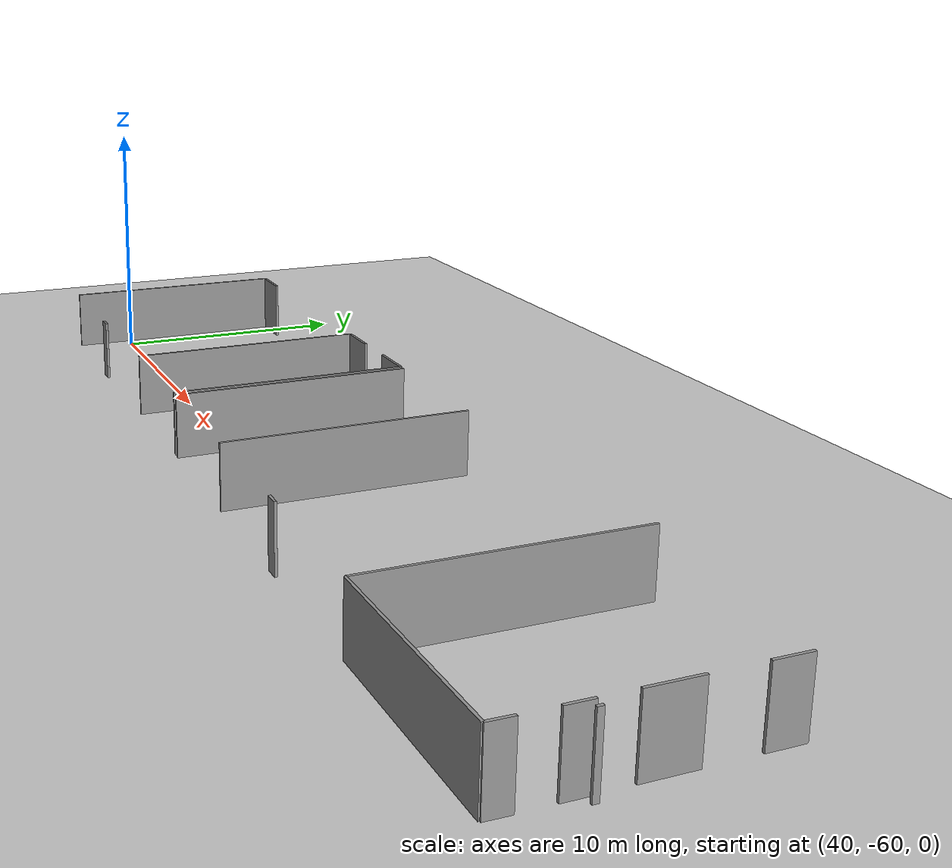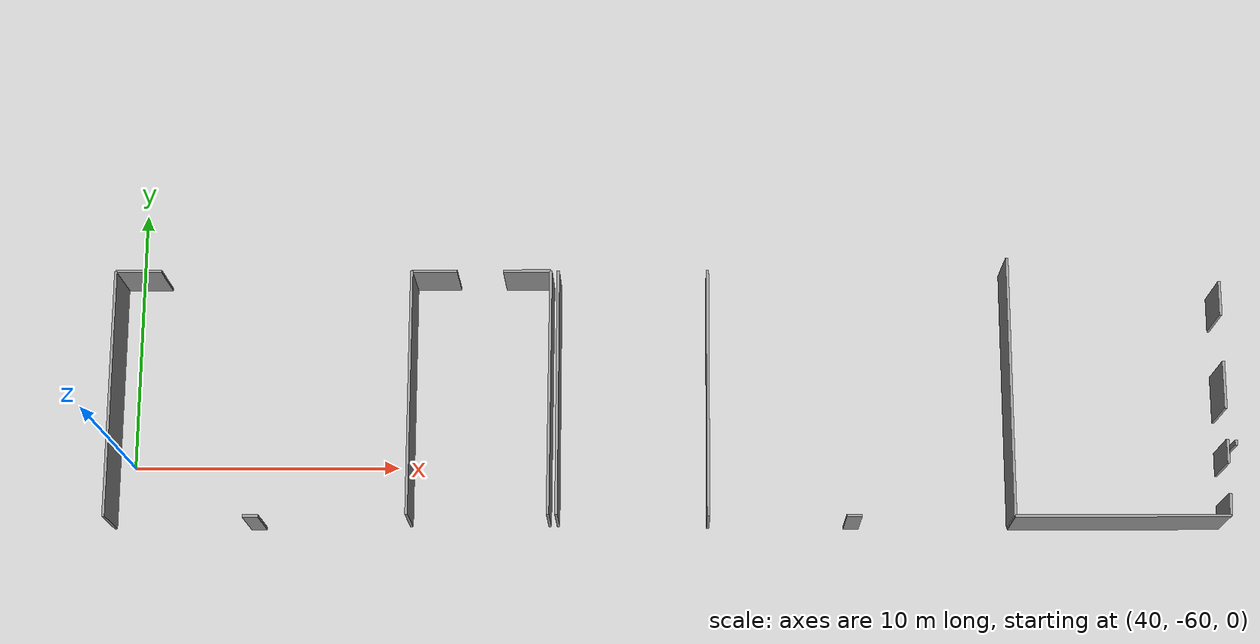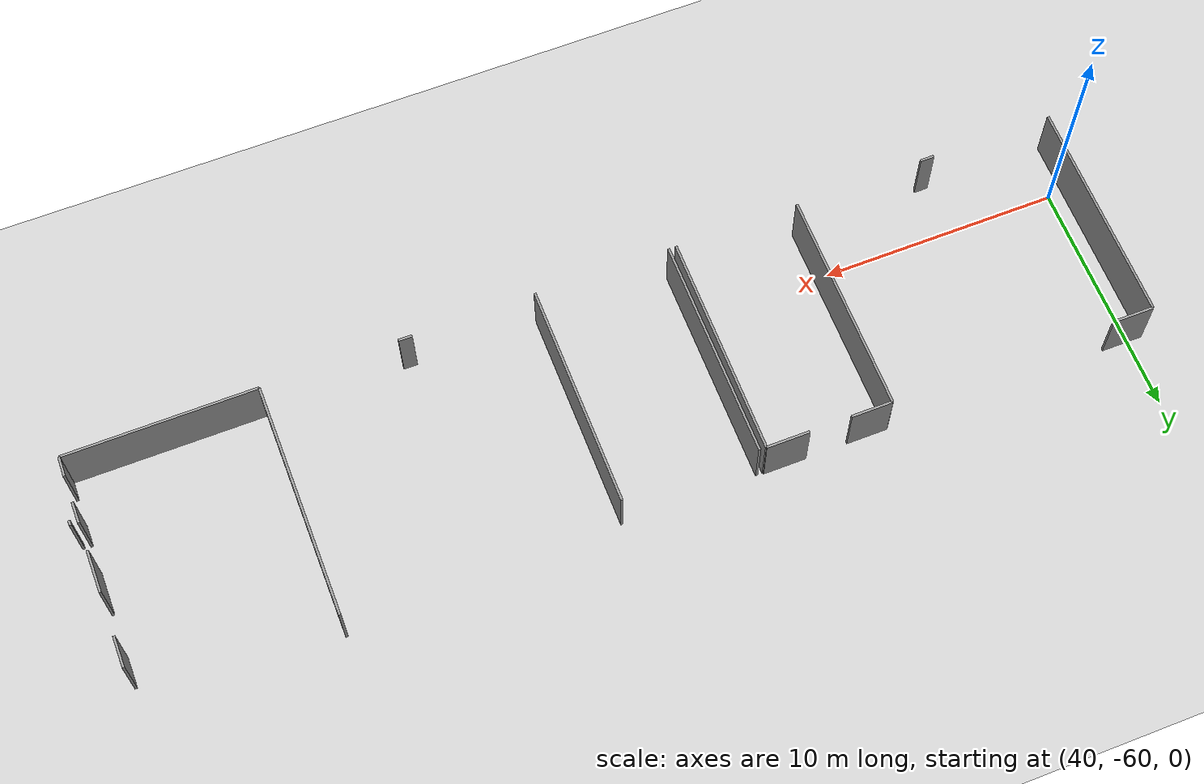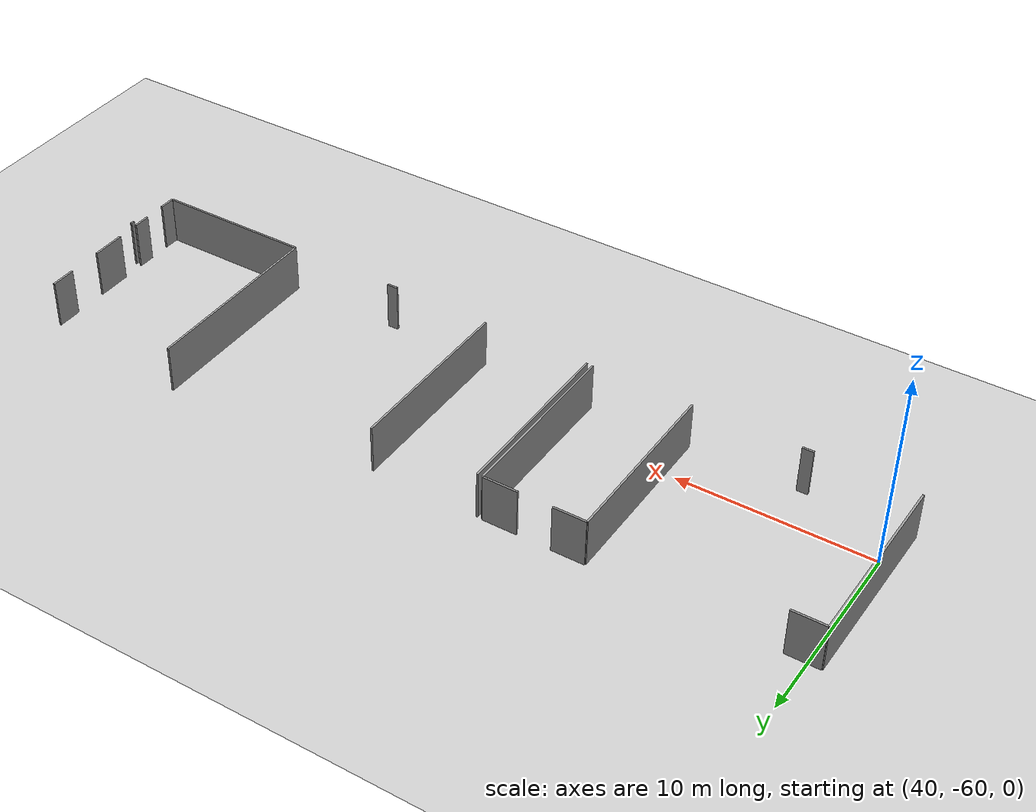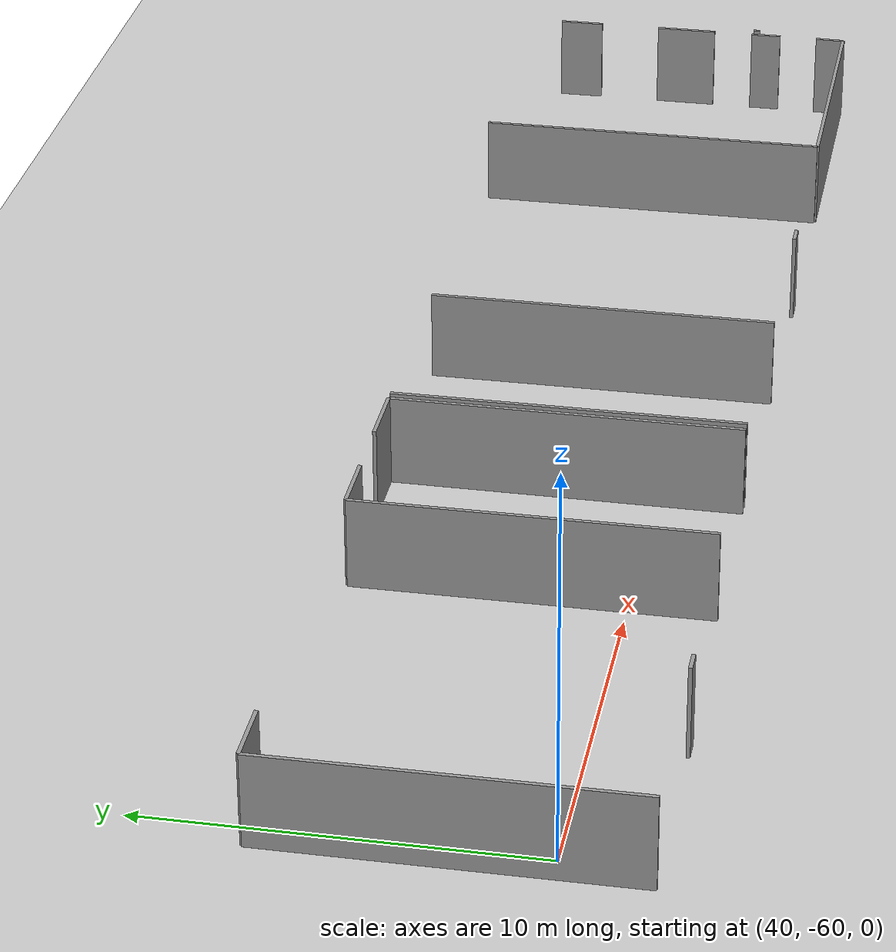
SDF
<sdf version="1.6">
 <world name="default">
  <model name="ground_plane">
   <static>1</static>
   <link name="link">
    <collision name="collision">
     <geometry><plane><normal>0 0 1</normal><size>100 100</size></plane></geometry>
     <surface><friction><ode><mu>100</mu><mu2>50</mu2></ode></friction></surface>
    </collision>
    <visual name="visual">
     <cast_shadows>0</cast_shadows>
     <geometry><plane><normal>0 0 1</normal><size>100 100</size></plane></geometry>
     <material>
      <script><uri>file://media/materials/scripts/gazebo.material</uri><name>Gazebo/Grey</name></script>
     </material>
    </visual>
   </link>
  </model>
  <model name="0510045905_A_40_1_103">
   <static>1</static>
   <link name="Wall_519">
    <collision name="Wall_519_Collision">
     <geometry><box><size>0.583999035551 0.1 2.5</size></box></geometry>
     <pose>0.291999517776 0 1.25 0 0 0</pose>
    </collision>
    <visual name="Wall_519_Visual">
     <pose>0.291999517776 0 1.25 0 0 0</pose>
     <geometry><box><size>0.583999035551 0.1 2.5</size></box></geometry>
     <material>
      <script><uri>file://media/materials/scripts/gazebo.material</uri><name>Gazebo/Grey</name></script>
      <ambient>1 1 1 1</ambient>
     </material>
    </visual>
    <pose>128.877495987 -124.723260344 0 0 0 3.14159265359</pose>
   </link>
   <link name="Wall_520">
    <collision name="Wall_520_Collision">
     <geometry><box><size>9.405912324 0.1 2.5</size></box></geometry>
     <pose>4.702956162 0 1.25 0 0 0</pose>
    </collision>
    <visual name="Wall_520_Visual">
     <pose>4.702956162 0 1.25 0 0 0</pose>
     <geometry><box><size>9.405912324 0.1 2.5</size></box></geometry>
     <material>
      <script><uri>file://media/materials/scripts/gazebo.material</uri><name>Gazebo/Grey</name></script>
      <ambient>1 1 1 1</ambient>
     </material>
    </visual>
    <pose>123.153493271 -124.723260344 0 0 0 1.57079632679</pose>
   </link>
   <link name="Wall_521">
    <collision name="Wall_521_Collision">
     <geometry><box><size>1.73169292463 0.1 2.5</size></box></geometry>
     <pose>0.865846462314 0 1.25 0 0 0</pose>
    </collision>
    <visual name="Wall_521_Visual">
     <pose>0.865846462314 0 1.25 0 0 0</pose>
     <geometry><box><size>1.73169292463 0.1 2.5</size></box></geometry>
     <material>
      <script><uri>file://media/materials/scripts/gazebo.material</uri><name>Gazebo/Grey</name></script>
      <ambient>1 1 1 1</ambient>
     </material>
    </visual>
    <pose>123.153493271 -115.31734802 0 0 0 0.0</pose>
   </link>
   <link name="Wall_525">
    <collision name="Wall_525_Collision">
     <geometry><box><size>9.34601498702 0.1 2.5</size></box></geometry>
     <pose>4.67300749351 0 1.25 0 0 0</pose>
    </collision>
    <visual name="Wall_525_Visual">
     <pose>4.67300749351 0 1.25 0 0 0</pose>
     <geometry><box><size>9.34601498702 0.1 2.5</size></box></geometry>
     <material>
      <script><uri>file://media/materials/scripts/gazebo.material</uri><name>Gazebo/Grey</name></script>
      <ambient>1 1 1 1</ambient>
     </material>
    </visual>
    <pose>134.336529127 -124.667677646 0 0 0 1.57079632679</pose>
   </link>
   <link name="Wall_526">
    <collision name="Wall_526_Collision">
     <geometry><box><size>1.71722619493 0.1 2.5</size></box></geometry>
     <pose>0.858613097466 0 1.25 0 0 0</pose>
    </collision>
    <visual name="Wall_526_Visual">
     <pose>0.858613097466 0 1.25 0 0 0</pose>
     <geometry><box><size>1.71722619493 0.1 2.5</size></box></geometry>
     <material>
      <script><uri>file://media/materials/scripts/gazebo.material</uri><name>Gazebo/Grey</name></script>
      <ambient>1 1 1 1</ambient>
     </material>
    </visual>
    <pose>134.336529127 -115.321662659 0 0 0 0.0</pose>
   </link>
   <link name="Wall_527">
    <collision name="Wall_527_Collision">
     <geometry><box><size>1.79945813214 0.1 2.5</size></box></geometry>
     <pose>0.899729066071 0 1.25 0 0 0</pose>
    </collision>
    <visual name="Wall_527_Visual">
     <pose>0.899729066071 0 1.25 0 0 0</pose>
     <geometry><box><size>1.79945813214 0.1 2.5</size></box></geometry>
     <material>
      <script><uri>file://media/materials/scripts/gazebo.material</uri><name>Gazebo/Grey</name></script>
      <ambient>1 1 1 1</ambient>
     </material>
    </visual>
    <pose>137.798899767 -115.321662659 0 0 0 0.0</pose>
   </link>
   <link name="Wall_528">
    <collision name="Wall_528_Collision">
     <geometry><box><size>9.34609149475 0.1 2.5</size></box></geometry>
     <pose>4.67304574738 0 1.25 0 0 0</pose>
    </collision>
    <visual name="Wall_528_Visual">
     <pose>4.67304574738 0 1.25 0 0 0</pose>
     <geometry><box><size>9.34609149475 0.1 2.5</size></box></geometry>
     <material>
      <script><uri>file://media/materials/scripts/gazebo.material</uri><name>Gazebo/Grey</name></script>
      <ambient>1 1 1 1</ambient>
     </material>
    </visual>
    <pose>139.598357899 -115.321662659 0 0 0 -1.57484257888</pose>
   </link>
   <link name="Wall_529">
    <collision name="Wall_529_Collision">
     <geometry><box><size>9.35565947349 0.1 2.5</size></box></geometry>
     <pose>4.67782973674 0 1.25 0 0 0</pose>
    </collision>
    <visual name="Wall_529_Visual">
     <pose>4.67782973674 0 1.25 0 0 0</pose>
     <geometry><box><size>9.35565947349 0.1 2.5</size></box></geometry>
     <material>
      <script><uri>file://media/materials/scripts/gazebo.material</uri><name>Gazebo/Grey</name></script>
      <ambient>1 1 1 1</ambient>
     </material>
    </visual>
    <pose>139.874748577 -124.673007494 0 0 0 1.57079632679</pose>
   </link>
   <link name="Wall_533">
    <collision name="Wall_533_Collision">
     <geometry><box><size>0.572577933161 0.1 2.5</size></box></geometry>
     <pose>0.286288966581 0 1.25 0 0 0</pose>
    </collision>
    <visual name="Wall_533_Visual">
     <pose>0.286288966581 0 1.25 0 0 0</pose>
     <geometry><box><size>0.572577933161 0.1 2.5</size></box></geometry>
     <material>
      <script><uri>file://media/materials/scripts/gazebo.material</uri><name>Gazebo/Grey</name></script>
      <ambient>1 1 1 1</ambient>
     </material>
    </visual>
    <pose>151.194330057 -124.734427644 0 0 0 3.14159265359</pose>
   </link>
   <link name="Wall_534">
    <collision name="Wall_534_Collision">
     <geometry><box><size>9.42317087873 0.1 2.5</size></box></geometry>
     <pose>4.71158543936 0 1.25 0 0 0</pose>
    </collision>
    <visual name="Wall_534_Visual">
     <pose>4.71158543936 0 1.25 0 0 0</pose>
     <geometry><box><size>9.42317087873 0.1 2.5</size></box></geometry>
     <material>
      <script><uri>file://media/materials/scripts/gazebo.material</uri><name>Gazebo/Grey</name></script>
      <ambient>1 1 1 1</ambient>
     </material>
    </visual>
    <pose>145.515250344 -124.734427644 0 0 0 1.57079632679</pose>
   </link>
   <link name="Wall_538">
    <collision name="Wall_538_Collision">
     <geometry><box><size>7.96431540009 0.1 2.5</size></box></geometry>
     <pose>3.98215770004 0 1.25 0 0 0</pose>
    </collision>
    <visual name="Wall_538_Visual">
     <pose>3.98215770004 0 1.25 0 0 0</pose>
     <geometry><box><size>7.96431540009 0.1 2.5</size></box></geometry>
     <material>
      <script><uri>file://media/materials/scripts/gazebo.material</uri><name>Gazebo/Grey</name></script>
      <ambient>1 1 1 1</ambient>
     </material>
    </visual>
    <pose>164.813360152 -124.756508442 0 0 0 3.14159265359</pose>
   </link>
   <link name="Wall_539">
    <collision name="Wall_539_Collision">
     <geometry><box><size>9.92163854749 0.1 2.5</size></box></geometry>
     <pose>4.96081927374 0 1.25 0 0 0</pose>
    </collision>
    <visual name="Wall_539_Visual">
     <pose>4.96081927374 0 1.25 0 0 0</pose>
     <geometry><box><size>9.92163854749 0.1 2.5</size></box></geometry>
     <material>
      <script><uri>file://media/materials/scripts/gazebo.material</uri><name>Gazebo/Grey</name></script>
      <ambient>1 1 1 1</ambient>
     </material>
    </visual>
    <pose>156.849044752 -124.756508442 0 0 0 1.57079632679</pose>
   </link>
   <link name="Wall_544">
    <collision name="Wall_544_Collision">
     <geometry><box><size>1.30149806793 0.1 2.5</size></box></geometry>
     <pose>0.650749033965 0 1.25 0 0 0</pose>
    </collision>
    <visual name="Wall_544_Visual">
     <pose>0.650749033965 0 1.25 0 0 0</pose>
     <geometry><box><size>1.30149806793 0.1 2.5</size></box></geometry>
     <material>
      <script><uri>file://media/materials/scripts/gazebo.material</uri><name>Gazebo/Grey</name></script>
      <ambient>1 1 1 1</ambient>
     </material>
    </visual>
    <pose>164.832395322 -115.778506754 0 0 0 -1.57079632679</pose>
   </link>
   <link name="Wall_545">
    <collision name="Wall_545_Collision">
     <geometry><box><size>1.8040265731 0.1 2.5</size></box></geometry>
     <pose>0.902013286549 0 1.25 0 0 0</pose>
    </collision>
    <visual name="Wall_545_Visual">
     <pose>0.902013286549 0 1.25 0 0 0</pose>
     <geometry><box><size>1.8040265731 0.1 2.5</size></box></geometry>
     <material>
      <script><uri>file://media/materials/scripts/gazebo.material</uri><name>Gazebo/Grey</name></script>
      <ambient>1 1 1 1</ambient>
     </material>
    </visual>
    <pose>164.832395322 -118.884031395 0 0 0 -1.57079632679</pose>
   </link>
   <link name="Wall_546">
    <collision name="Wall_546_Collision">
     <geometry><box><size>0.901251879723 0.1 2.5</size></box></geometry>
     <pose>0.450625939862 0 1.25 0 0 0</pose>
    </collision>
    <visual name="Wall_546_Visual">
     <pose>0.450625939862 0 1.25 0 0 0</pose>
     <geometry><box><size>0.901251879723 0.1 2.5</size></box></geometry>
     <material>
      <script><uri>file://media/materials/scripts/gazebo.material</uri><name>Gazebo/Grey</name></script>
      <ambient>1 1 1 1</ambient>
     </material>
    </visual>
    <pose>164.832395322 -121.86950756 0 0 0 -1.57079632679</pose>
   </link>
   <link name="Wall_547">
    <collision name="Wall_547_Collision">
     <geometry><box><size>0.843599745182 0.1 2.5</size></box></geometry>
     <pose>0.421799872591 0 1.25 0 0 0</pose>
    </collision>
    <visual name="Wall_547_Visual">
     <pose>0.421799872591 0 1.25 0 0 0</pose>
     <geometry><box><size>0.843599745182 0.1 2.5</size></box></geometry>
     <material>
      <script><uri>file://media/materials/scripts/gazebo.material</uri><name>Gazebo/Grey</name></script>
      <ambient>1 1 1 1</ambient>
     </material>
    </visual>
    <pose>164.832395322 -123.913123481 0 0 0 -1.59336246246</pose>
   </link>
   <link name="Wall_559">
    <collision name="Wall_559_Collision">
     <geometry><box><size>0.201772808893 0.1 2.5</size></box></geometry>
     <pose>0.100886404447 0 1.25 0 0 0</pose>
    </collision>
    <visual name="Wall_559_Visual">
     <pose>0.100886404447 0 1.25 0 0 0</pose>
     <geometry><box><size>0.201772808893 0.1 2.5</size></box></geometry>
     <material>
      <script><uri>file://media/materials/scripts/gazebo.material</uri><name>Gazebo/Grey</name></script>
      <ambient>1 1 1 1</ambient>
     </material>
    </visual>
    <pose>165.150663376 -122.093361167 0 0 0 1.57079632679</pose>
   </link>
   <pose>-83.8 62.4001624335 0 0 0 0</pose>
  </model>
 </world>
</sdf>
